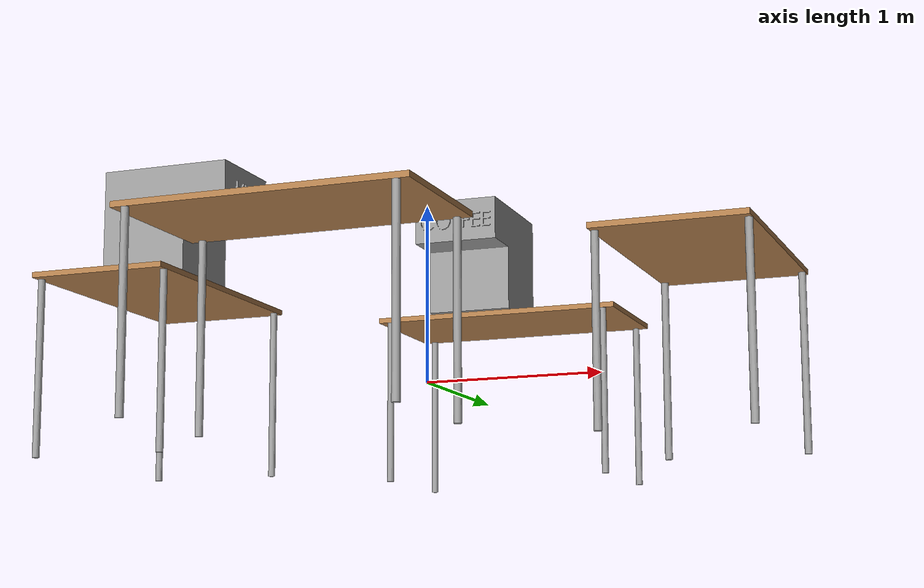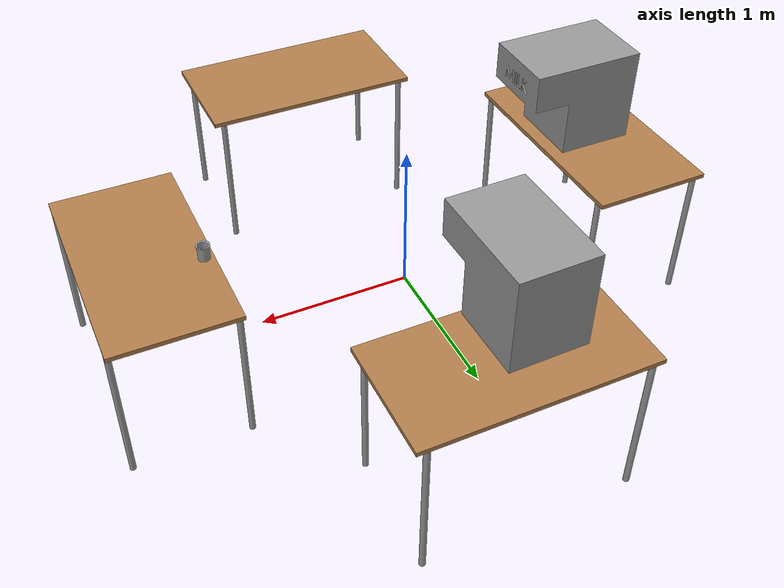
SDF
<?xml version='1.0'?>
<sdf version='1.7'>
  <model name='Coffee_Shop_Model_V3'>
    <link name='link_0'>
      <inertial>
        <mass>1</mass>
        <inertia>
          <ixx>0.166667</ixx>
          <ixy>0</ixy>
          <ixz>0</ixz>
          <iyy>0.166667</iyy>
          <iyz>0</iyz>
          <izz>0.166667</izz>
        </inertia>
      </inertial>
      <pose>0.059933 1.25129 0.589943 1.57072 -0.004244 -1.55352</pose>
      <visual name='visual'>
        <pose>0 0 0 0 -0 0</pose>
        <geometry>
          <mesh>
            <uri>/project_2_WS/src/barista_robot/worlds/coffee_machine_model/meshes/base_link.STL</uri>
            <scale>1 1 1</scale>
          </mesh>
        </geometry>
        <material>
          <lighting>1</lighting>
          <script>
            <uri>file://media/materials/scripts/gazebo.material</uri>
            <name>Gazebo/Grey</name>
          </script>
          <shader type='pixel'/>
        </material>
        <transparency>0</transparency>
        <cast_shadows>1</cast_shadows>
      </visual>
      <collision name='collision'>
        <laser_retro>0</laser_retro>
        <max_contacts>10</max_contacts>
        <pose>0 0 0 0 -0 0</pose>
        <geometry>
          <mesh>
            <uri>/project_2_WS/src/barista_robot/worlds/coffee_machine_model/meshes/base_link.STL</uri>
            <scale>1 1 1</scale>
          </mesh>
        </geometry>
        <surface>
          <friction>
            <ode>
              <mu>1</mu>
              <mu2>1</mu2>
              <fdir1>0 0 0</fdir1>
              <slip1>0</slip1>
              <slip2>0</slip2>
            </ode>
            <torsional>
              <coefficient>1</coefficient>
              <patch_radius>0</patch_radius>
              <surface_radius>0</surface_radius>
              <use_patch_radius>1</use_patch_radius>
              <ode>
                <slip>0</slip>
              </ode>
            </torsional>
          </friction>
          <bounce>
            <restitution_coefficient>0</restitution_coefficient>
            <threshold>1e+06</threshold>
          </bounce>
          <contact>
            <collide_without_contact>0</collide_without_contact>
            <collide_without_contact_bitmask>1</collide_without_contact_bitmask>
            <collide_bitmask>1</collide_bitmask>
            <ode>
              <soft_cfm>0</soft_cfm>
              <soft_erp>0.2</soft_erp>
              <kp>1e+13</kp>
              <kd>1</kd>
              <max_vel>0.01</max_vel>
              <min_depth>0</min_depth>
            </ode>
            <bullet>
              <split_impulse>1</split_impulse>
              <split_impulse_penetration_threshold>-0.01</split_impulse_penetration_threshold>
              <soft_cfm>0</soft_cfm>
              <soft_erp>0.2</soft_erp>
              <kp>1e+13</kp>
              <kd>1</kd>
            </bullet>
          </contact>
        </surface>
      </collision>
    </link>
    <link name='link_1'>
      <inertial>
        <mass>1</mass>
        <inertia>
          <ixx>0.166667</ixx>
          <ixy>0</ixy>
          <ixz>0</ixz>
          <iyy>0.166667</iyy>
          <iyz>0</iyz>
          <izz>0.166667</izz>
        </inertia>
      </inertial>
      <pose>-1.5311 -0.183448 0.584686 1.56674 -0 0</pose>
      <visual name='visual'>
        <pose>0 0 0 0 -0 0</pose>
        <geometry>
          <mesh>
            <uri>/project_2_WS/src/barista_robot/worlds/milk_machine_model/meshes/base_link.STL</uri>
            <scale>1 1 1</scale>
          </mesh>
        </geometry>
        <material>
          <lighting>1</lighting>
          <script>
            <uri>file://media/materials/scripts/gazebo.material</uri>
            <name>Gazebo/Grey</name>
          </script>
          <shader type='pixel'/>
        </material>
        <transparency>0</transparency>
        <cast_shadows>1</cast_shadows>
      </visual>
      <collision name='collision'>
        <laser_retro>0</laser_retro>
        <max_contacts>10</max_contacts>
        <pose>0 0 0 0 -0 0</pose>
        <geometry>
          <mesh>
            <uri>/project_2_WS/src/barista_robot/worlds/milk_machine_model/meshes/base_link.STL</uri>
            <scale>1 1 1</scale>
          </mesh>
        </geometry>
        <surface>
          <friction>
            <ode>
              <mu>1</mu>
              <mu2>1</mu2>
              <fdir1>0 0 0</fdir1>
              <slip1>0</slip1>
              <slip2>0</slip2>
            </ode>
            <torsional>
              <coefficient>1</coefficient>
              <patch_radius>0</patch_radius>
              <surface_radius>0</surface_radius>
              <use_patch_radius>1</use_patch_radius>
              <ode>
                <slip>0</slip>
              </ode>
            </torsional>
          </friction>
          <bounce>
            <restitution_coefficient>0</restitution_coefficient>
            <threshold>1e+06</threshold>
          </bounce>
          <contact>
            <collide_without_contact>0</collide_without_contact>
            <collide_without_contact_bitmask>1</collide_without_contact_bitmask>
            <collide_bitmask>1</collide_bitmask>
            <ode>
              <soft_cfm>0</soft_cfm>
              <soft_erp>0.2</soft_erp>
              <kp>1e+13</kp>
              <kd>1</kd>
              <max_vel>0.01</max_vel>
              <min_depth>0</min_depth>
            </ode>
            <bullet>
              <split_impulse>1</split_impulse>
              <split_impulse_penetration_threshold>-0.01</split_impulse_penetration_threshold>
              <soft_cfm>0</soft_cfm>
              <soft_erp>0.2</soft_erp>
              <kp>1e+13</kp>
              <kd>1</kd>
            </bullet>
          </contact>
        </surface>
      </collision>
    </link>
    <link name='link_2'>
      <inertial>
        <mass>1</mass>
        <inertia>
          <ixx>0.166667</ixx>
          <ixy>0</ixy>
          <ixz>0</ixz>
          <iyy>0.166667</iyy>
          <iyz>0</iyz>
          <izz>0.166667</izz>
        </inertia>
      </inertial>
      <pose>1.2927 -0.079798 0.581572 0 -0 0</pose>
      <visual name='visual'>
        <pose>0 0 0 0 -0 0</pose>
        <geometry>
          <mesh>
            <uri>/project_2_WS/src/barista_robot/worlds/coffee_cup_with_rim_model/meshes/base_link.STL</uri>
            <scale>1 1 1</scale>
          </mesh>
        </geometry>
        <material>
          <lighting>1</lighting>
          <script>
            <uri>file://media/materials/scripts/gazebo.material</uri>
            <name>Gazebo/Grey</name>
          </script>
          <shader type='pixel'/>
        </material>
        <transparency>0</transparency>
        <cast_shadows>1</cast_shadows>
      </visual>
      <collision name='collision'>
        <laser_retro>0</laser_retro>
        <max_contacts>10</max_contacts>
        <pose>0 0 0 0 -0 0</pose>
        <geometry>
          <mesh>
            <uri>/project_2_WS/src/barista_robot/worlds/coffee_cup_with_rim_model/meshes/base_link.STL</uri>
            <scale>1 1 1</scale>
          </mesh>
        </geometry>
        <surface>
          <friction>
            <ode>
              <mu>1</mu>
              <mu2>1</mu2>
              <fdir1>0 0 0</fdir1>
              <slip1>0</slip1>
              <slip2>0</slip2>
            </ode>
            <torsional>
              <coefficient>1</coefficient>
              <patch_radius>0</patch_radius>
              <surface_radius>0</surface_radius>
              <use_patch_radius>1</use_patch_radius>
              <ode>
                <slip>0</slip>
              </ode>
            </torsional>
          </friction>
          <bounce>
            <restitution_coefficient>0</restitution_coefficient>
            <threshold>1e+06</threshold>
          </bounce>
          <contact>
            <collide_without_contact>0</collide_without_contact>
            <collide_without_contact_bitmask>1</collide_without_contact_bitmask>
            <collide_bitmask>1</collide_bitmask>
            <ode>
              <soft_cfm>0</soft_cfm>
              <soft_erp>0.2</soft_erp>
              <kp>1e+13</kp>
              <kd>1</kd>
              <max_vel>0.01</max_vel>
              <min_depth>0</min_depth>
            </ode>
            <bullet>
              <split_impulse>1</split_impulse>
              <split_impulse_penetration_threshold>-0.01</split_impulse_penetration_threshold>
              <soft_cfm>0</soft_cfm>
              <soft_erp>0.2</soft_erp>
              <kp>1e+13</kp>
              <kd>1</kd>
            </bullet>
          </contact>
        </surface>
      </collision>
    </link>
    <model name='table'>
      <static>1</static>
      <link name='link'>
        <collision name='surface'>
          <pose>0 0 1 0 -0 0</pose>
          <geometry>
            <box>
              <size>1.5 0.8 0.03</size>
            </box>
          </geometry>
          <surface>
            <friction>
              <ode>
                <mu>0.6</mu>
                <mu2>0.6</mu2>
              </ode>
            </friction>
          </surface>
        </collision>
        <visual name='visual1'>
          <pose>0 0 1 0 -0 0</pose>
          <geometry>
            <box>
              <size>1.5 0.8 0.03</size>
            </box>
          </geometry>
          <material>
            <script>
              <uri>file://media/materials/scripts/gazebo.material</uri>
              <name>Gazebo/Wood</name>
            </script>
          </material>
        </visual>
        <collision name='front_left_leg'>
          <pose>0.68 0.38 0.5 0 -0 0</pose>
          <geometry>
            <cylinder>
              <radius>0.02</radius>
              <length>1</length>
            </cylinder>
          </geometry>
        </collision>
        <visual name='front_left_leg'>
          <pose>0.68 0.38 0.5 0 -0 0</pose>
          <geometry>
            <cylinder>
              <radius>0.02</radius>
              <length>1</length>
            </cylinder>
          </geometry>
          <material>
            <script>
              <uri>file://media/materials/scripts/gazebo.material</uri>
              <name>Gazebo/Grey</name>
            </script>
          </material>
        </visual>
        <collision name='front_right_leg'>
          <pose>0.68 -0.38 0.5 0 -0 0</pose>
          <geometry>
            <cylinder>
              <radius>0.02</radius>
              <length>1</length>
            </cylinder>
          </geometry>
        </collision>
        <visual name='front_right_leg'>
          <pose>0.68 -0.38 0.5 0 -0 0</pose>
          <geometry>
            <cylinder>
              <radius>0.02</radius>
              <length>1</length>
            </cylinder>
          </geometry>
          <material>
            <script>
              <uri>file://media/materials/scripts/gazebo.material</uri>
              <name>Gazebo/Grey</name>
            </script>
          </material>
        </visual>
        <collision name='back_right_leg'>
          <pose>-0.68 -0.38 0.5 0 -0 0</pose>
          <geometry>
            <cylinder>
              <radius>0.02</radius>
              <length>1</length>
            </cylinder>
          </geometry>
        </collision>
        <visual name='back_right_leg'>
          <pose>-0.68 -0.38 0.5 0 -0 0</pose>
          <geometry>
            <cylinder>
              <radius>0.02</radius>
              <length>1</length>
            </cylinder>
          </geometry>
          <material>
            <script>
              <uri>file://media/materials/scripts/gazebo.material</uri>
              <name>Gazebo/Grey</name>
            </script>
          </material>
        </visual>
        <collision name='back_left_leg'>
          <pose>-0.68 0.38 0.5 0 -0 0</pose>
          <geometry>
            <cylinder>
              <radius>0.02</radius>
              <length>1</length>
            </cylinder>
          </geometry>
        </collision>
        <visual name='back_left_leg'>
          <pose>-0.68 0.38 0.5 0 -0 0</pose>
          <geometry>
            <cylinder>
              <radius>0.02</radius>
              <length>1</length>
            </cylinder>
          </geometry>
          <material>
            <script>
              <uri>file://media/materials/scripts/gazebo.material</uri>
              <name>Gazebo/Grey</name>
            </script>
          </material>
        </visual>
      </link>
      <pose>1.62877 -0.26315 -0.43905 0 -0 1.56526</pose>
    </model>
    <model name='table_0'>
      <static>1</static>
      <link name='link'>
        <collision name='surface'>
          <pose>0 0 1 0 -0 0</pose>
          <geometry>
            <box>
              <size>1.5 0.8 0.03</size>
            </box>
          </geometry>
          <surface>
            <friction>
              <ode>
                <mu>0.6</mu>
                <mu2>0.6</mu2>
              </ode>
            </friction>
          </surface>
        </collision>
        <visual name='visual1'>
          <pose>0 0 1 0 -0 0</pose>
          <geometry>
            <box>
              <size>1.5 0.8 0.03</size>
            </box>
          </geometry>
          <material>
            <script>
              <uri>file://media/materials/scripts/gazebo.material</uri>
              <name>Gazebo/Wood</name>
            </script>
          </material>
        </visual>
        <collision name='front_left_leg'>
          <pose>0.68 0.38 0.5 0 -0 0</pose>
          <geometry>
            <cylinder>
              <radius>0.02</radius>
              <length>1</length>
            </cylinder>
          </geometry>
        </collision>
        <visual name='front_left_leg'>
          <pose>0.68 0.38 0.5 0 -0 0</pose>
          <geometry>
            <cylinder>
              <radius>0.02</radius>
              <length>1</length>
            </cylinder>
          </geometry>
          <material>
            <script>
              <uri>file://media/materials/scripts/gazebo.material</uri>
              <name>Gazebo/Grey</name>
            </script>
          </material>
        </visual>
        <collision name='front_right_leg'>
          <pose>0.68 -0.38 0.5 0 -0 0</pose>
          <geometry>
            <cylinder>
              <radius>0.02</radius>
              <length>1</length>
            </cylinder>
          </geometry>
        </collision>
        <visual name='front_right_leg'>
          <pose>0.68 -0.38 0.5 0 -0 0</pose>
          <geometry>
            <cylinder>
              <radius>0.02</radius>
              <length>1</length>
            </cylinder>
          </geometry>
          <material>
            <script>
              <uri>file://media/materials/scripts/gazebo.material</uri>
              <name>Gazebo/Grey</name>
            </script>
          </material>
        </visual>
        <collision name='back_right_leg'>
          <pose>-0.68 -0.38 0.5 0 -0 0</pose>
          <geometry>
            <cylinder>
              <radius>0.02</radius>
              <length>1</length>
            </cylinder>
          </geometry>
        </collision>
        <visual name='back_right_leg'>
          <pose>-0.68 -0.38 0.5 0 -0 0</pose>
          <geometry>
            <cylinder>
              <radius>0.02</radius>
              <length>1</length>
            </cylinder>
          </geometry>
          <material>
            <script>
              <uri>file://media/materials/scripts/gazebo.material</uri>
              <name>Gazebo/Grey</name>
            </script>
          </material>
        </visual>
        <collision name='back_left_leg'>
          <pose>-0.68 0.38 0.5 0 -0 0</pose>
          <geometry>
            <cylinder>
              <radius>0.02</radius>
              <length>1</length>
            </cylinder>
          </geometry>
        </collision>
        <visual name='back_left_leg'>
          <pose>-0.68 0.38 0.5 0 -0 0</pose>
          <geometry>
            <cylinder>
              <radius>0.02</radius>
              <length>1</length>
            </cylinder>
          </geometry>
          <material>
            <script>
              <uri>file://media/materials/scripts/gazebo.material</uri>
              <name>Gazebo/Grey</name>
            </script>
          </material>
        </visual>
      </link>
      <pose>0.052371 1.36 -0.43905 0 -0 0</pose>
    </model>
    <model name='table_1'>
      <static>1</static>
      <link name='link'>
        <collision name='surface'>
          <pose>0 0 1 0 -0 0</pose>
          <geometry>
            <box>
              <size>1.5 0.8 0.03</size>
            </box>
          </geometry>
          <surface>
            <friction>
              <ode>
                <mu>0.6</mu>
                <mu2>0.6</mu2>
              </ode>
            </friction>
          </surface>
        </collision>
        <visual name='visual1'>
          <pose>0 0 1 0 -0 0</pose>
          <geometry>
            <box>
              <size>1.5 0.8 0.03</size>
            </box>
          </geometry>
          <material>
            <script>
              <uri>file://media/materials/scripts/gazebo.material</uri>
              <name>Gazebo/Wood</name>
            </script>
          </material>
        </visual>
        <collision name='front_left_leg'>
          <pose>0.68 0.38 0.5 0 -0 0</pose>
          <geometry>
            <cylinder>
              <radius>0.02</radius>
              <length>1</length>
            </cylinder>
          </geometry>
        </collision>
        <visual name='front_left_leg'>
          <pose>0.68 0.38 0.5 0 -0 0</pose>
          <geometry>
            <cylinder>
              <radius>0.02</radius>
              <length>1</length>
            </cylinder>
          </geometry>
          <material>
            <script>
              <uri>file://media/materials/scripts/gazebo.material</uri>
              <name>Gazebo/Grey</name>
            </script>
          </material>
        </visual>
        <collision name='front_right_leg'>
          <pose>0.68 -0.38 0.5 0 -0 0</pose>
          <geometry>
            <cylinder>
              <radius>0.02</radius>
              <length>1</length>
            </cylinder>
          </geometry>
        </collision>
        <visual name='front_right_leg'>
          <pose>0.68 -0.38 0.5 0 -0 0</pose>
          <geometry>
            <cylinder>
              <radius>0.02</radius>
              <length>1</length>
            </cylinder>
          </geometry>
          <material>
            <script>
              <uri>file://media/materials/scripts/gazebo.material</uri>
              <name>Gazebo/Grey</name>
            </script>
          </material>
        </visual>
        <collision name='back_right_leg'>
          <pose>-0.68 -0.38 0.5 0 -0 0</pose>
          <geometry>
            <cylinder>
              <radius>0.02</radius>
              <length>1</length>
            </cylinder>
          </geometry>
        </collision>
        <visual name='back_right_leg'>
          <pose>-0.68 -0.38 0.5 0 -0 0</pose>
          <geometry>
            <cylinder>
              <radius>0.02</radius>
              <length>1</length>
            </cylinder>
          </geometry>
          <material>
            <script>
              <uri>file://media/materials/scripts/gazebo.material</uri>
              <name>Gazebo/Grey</name>
            </script>
          </material>
        </visual>
        <collision name='back_left_leg'>
          <pose>-0.68 0.38 0.5 0 -0 0</pose>
          <geometry>
            <cylinder>
              <radius>0.02</radius>
              <length>1</length>
            </cylinder>
          </geometry>
        </collision>
        <visual name='back_left_leg'>
          <pose>-0.68 0.38 0.5 0 -0 0</pose>
          <geometry>
            <cylinder>
              <radius>0.02</radius>
              <length>1</length>
            </cylinder>
          </geometry>
          <material>
            <script>
              <uri>file://media/materials/scripts/gazebo.material</uri>
              <name>Gazebo/Grey</name>
            </script>
          </material>
        </visual>
      </link>
      <pose>0.035425 -1.82696 -0.43905 0 -0 0</pose>
    </model>
    <model name='table_2'>
      <static>1</static>
      <link name='link'>
        <collision name='surface'>
          <pose>0 0 1 0 -0 0</pose>
          <geometry>
            <box>
              <size>1.5 0.8 0.03</size>
            </box>
          </geometry>
          <surface>
            <friction>
              <ode>
                <mu>0.6</mu>
                <mu2>0.6</mu2>
              </ode>
            </friction>
          </surface>
        </collision>
        <visual name='visual1'>
          <pose>0 0 1 0 -0 0</pose>
          <geometry>
            <box>
              <size>1.5 0.8 0.03</size>
            </box>
          </geometry>
          <material>
            <script>
              <uri>file://media/materials/scripts/gazebo.material</uri>
              <name>Gazebo/Wood</name>
            </script>
          </material>
        </visual>
        <collision name='front_left_leg'>
          <pose>0.68 0.38 0.5 0 -0 0</pose>
          <geometry>
            <cylinder>
              <radius>0.02</radius>
              <length>1</length>
            </cylinder>
          </geometry>
        </collision>
        <visual name='front_left_leg'>
          <pose>0.68 0.38 0.5 0 -0 0</pose>
          <geometry>
            <cylinder>
              <radius>0.02</radius>
              <length>1</length>
            </cylinder>
          </geometry>
          <material>
            <script>
              <uri>file://media/materials/scripts/gazebo.material</uri>
              <name>Gazebo/Grey</name>
            </script>
          </material>
        </visual>
        <collision name='front_right_leg'>
          <pose>0.68 -0.38 0.5 0 -0 0</pose>
          <geometry>
            <cylinder>
              <radius>0.02</radius>
              <length>1</length>
            </cylinder>
          </geometry>
        </collision>
        <visual name='front_right_leg'>
          <pose>0.68 -0.38 0.5 0 -0 0</pose>
          <geometry>
            <cylinder>
              <radius>0.02</radius>
              <length>1</length>
            </cylinder>
          </geometry>
          <material>
            <script>
              <uri>file://media/materials/scripts/gazebo.material</uri>
              <name>Gazebo/Grey</name>
            </script>
          </material>
        </visual>
        <collision name='back_right_leg'>
          <pose>-0.68 -0.38 0.5 0 -0 0</pose>
          <geometry>
            <cylinder>
              <radius>0.02</radius>
              <length>1</length>
            </cylinder>
          </geometry>
        </collision>
        <visual name='back_right_leg'>
          <pose>-0.68 -0.38 0.5 0 -0 0</pose>
          <geometry>
            <cylinder>
              <radius>0.02</radius>
              <length>1</length>
            </cylinder>
          </geometry>
          <material>
            <script>
              <uri>file://media/materials/scripts/gazebo.material</uri>
              <name>Gazebo/Grey</name>
            </script>
          </material>
        </visual>
        <collision name='back_left_leg'>
          <pose>-0.68 0.38 0.5 0 -0 0</pose>
          <geometry>
            <cylinder>
              <radius>0.02</radius>
              <length>1</length>
            </cylinder>
          </geometry>
        </collision>
        <visual name='back_left_leg'>
          <pose>-0.68 0.38 0.5 0 -0 0</pose>
          <geometry>
            <cylinder>
              <radius>0.02</radius>
              <length>1</length>
            </cylinder>
          </geometry>
          <material>
            <script>
              <uri>file://media/materials/scripts/gazebo.material</uri>
              <name>Gazebo/Grey</name>
            </script>
          </material>
        </visual>
      </link>
      <pose>-1.5381 -0.257927 -0.43905 0 0 -1.56447</pose>
    </model>
    <static>0</static>
    <allow_auto_disable>1</allow_auto_disable>
  </model>
</sdf>
